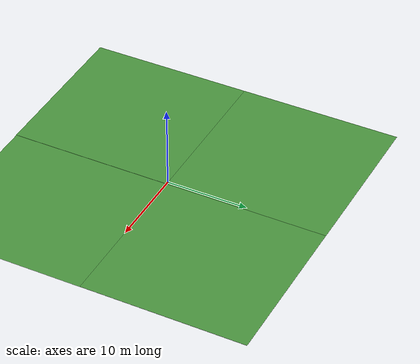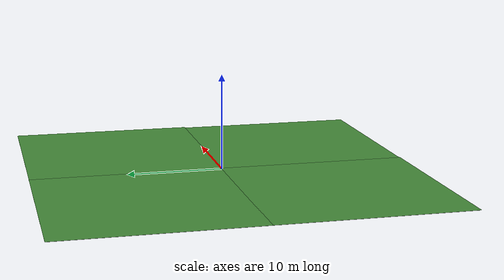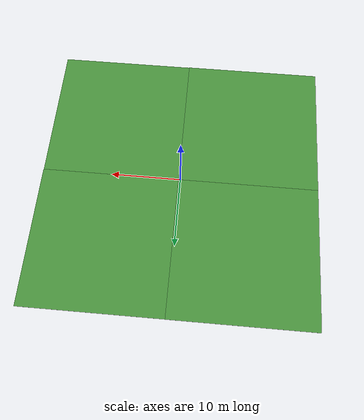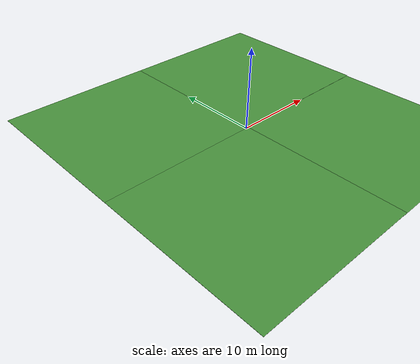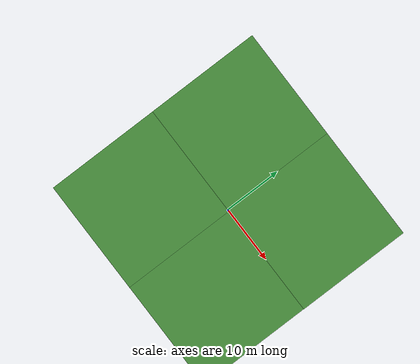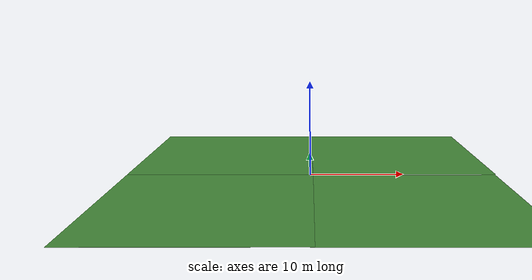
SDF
<sdf version="1.7">
 <world name="default">
  <light name="sun" type="directional">
   <pose>0 0 10 0 -0 0</pose>
   <diffuse>0.8 0.8 0.8 1</diffuse>
   <specular>0.2 0.2 0.2 1</specular>
   <attenuation>
    <range>1000</range>
    <constant>0.9</constant>
    <linear>0.01</linear>
    <quadratic>0.001</quadratic>
   </attenuation>
   <direction>-0.5 0.1 -0.9</direction>
   <spot><inner_angle>0</inner_angle><outer_angle>0</outer_angle><falloff>0</falloff></spot>
  </light>
  <gravity>0 0 -9.8</gravity>
  <magnetic_field>6e-06 2.3e-05 -4.2e-05</magnetic_field>
  <atmosphere type="adiabatic"/>
  <physics type="ode">
   <max_step_size>0.001</max_step_size>
   <real_time_factor>1</real_time_factor>
   <real_time_update_rate>1000</real_time_update_rate>
  </physics>
  <scene><ambient>0.4 0.4 0.4 1</ambient><background>0.7 0.7 0.7 1</background><shadows>1</shadows></scene>
  <spherical_coordinates>
   <surface_model>EARTH_WGS84</surface_model>
   <latitude_deg>0</latitude_deg>
   <longitude_deg>0</longitude_deg>
   <elevation>0</elevation>
   <heading_deg>0</heading_deg>
  </spherical_coordinates>
  <model name="ground_grass">
   <static>1</static>
   <link name="link">
    <collision name="collision">
     <geometry><plane><normal>0 0 1</normal><size>20 20</size></plane></geometry>
     <surface>
      <contact><collide_bitmask>65535</collide_bitmask></contact>
      <friction><ode><mu>50</mu><mu2>25</mu2></ode></friction>
     </surface>
    </collision>
    <visual name="visual">
     <cast_shadows>0</cast_shadows>
     <geometry><plane><normal>0 0 1</normal><size>20 20</size></plane></geometry>
     <material>
      <script>
       <uri>model://ground_grass_1/materials/scripts</uri>
       <uri>model://ground_grass_1/materials/textures</uri>
       <name>GrassGround</name>
      </script>
     </material>
    </visual>
   </link>
   <pose>9.95761 -9.96744 0 0 -0 0</pose>
  </model>
  <model name="ground_grass_0">
   <static>1</static>
   <link name="link">
    <collision name="collision">
     <geometry><plane><normal>0 0 1</normal><size>20 20</size></plane></geometry>
     <surface>
      <contact><collide_bitmask>65535</collide_bitmask></contact>
      <friction><ode><mu>100</mu><mu2>50</mu2></ode></friction>
     </surface>
    </collision>
    <visual name="visual">
     <cast_shadows>0</cast_shadows>
     <geometry><plane><normal>0 0 1</normal><size>20 20</size></plane></geometry>
     <material>
      <script>
       <uri>model://ground_grass_2/materials/scripts</uri>
       <uri>model://ground_grass_2/materials/textures</uri>
       <name>GrassGround</name>
      </script>
     </material>
    </visual>
   </link>
   <pose>9.98212 9.97026 0 0 -0 0</pose>
  </model>
  <model name="ground_grass_1">
   <static>1</static>
   <link name="link">
    <collision name="collision">
     <geometry><plane><normal>0 0 1</normal><size>20 20</size></plane></geometry>
     <surface>
      <contact><collide_bitmask>65535</collide_bitmask></contact>
      <friction><ode><mu>50</mu><mu2>25</mu2></ode></friction>
     </surface>
    </collision>
    <visual name="visual">
     <cast_shadows>0</cast_shadows>
     <geometry><plane><normal>0 0 1</normal><size>20 20</size></plane></geometry>
     <material>
      <script>
       <uri>model://ground_grass_1/materials/scripts</uri>
       <uri>model://ground_grass_1/materials/textures</uri>
       <name>GrassGround</name>
      </script>
     </material>
    </visual>
   </link>
   <pose>-9.6884 9.97884 0 0 -0 0</pose>
  </model>
  <model name="ground_grass_2">
   <static>1</static>
   <link name="link">
    <collision name="collision">
     <geometry><plane><normal>0 0 1</normal><size>20 20</size></plane></geometry>
     <surface>
      <contact><collide_bitmask>65535</collide_bitmask></contact>
      <friction><ode><mu>50</mu><mu2>25</mu2></ode></friction>
     </surface>
    </collision>
    <visual name="visual">
     <cast_shadows>0</cast_shadows>
     <geometry><plane><normal>0 0 1</normal><size>20 20</size></plane></geometry>
     <material>
      <script>
       <uri>model://ground_grass_1/materials/scripts</uri>
       <uri>model://ground_grass_1/materials/textures</uri>
       <name>GrassGround</name>
      </script>
     </material>
    </visual>
   </link>
   <pose>-9.68145 -9.96855 0 0 -0 0</pose>
  </model>
 </world>
</sdf>
